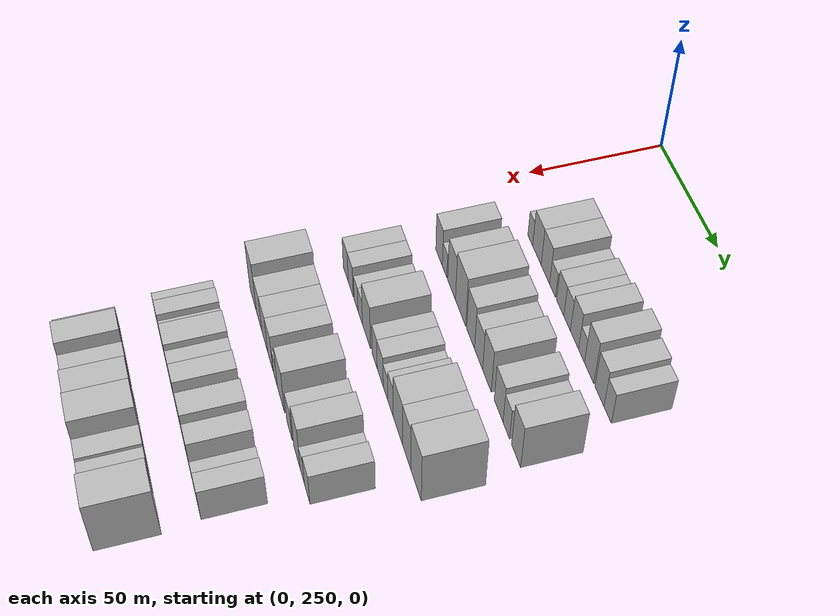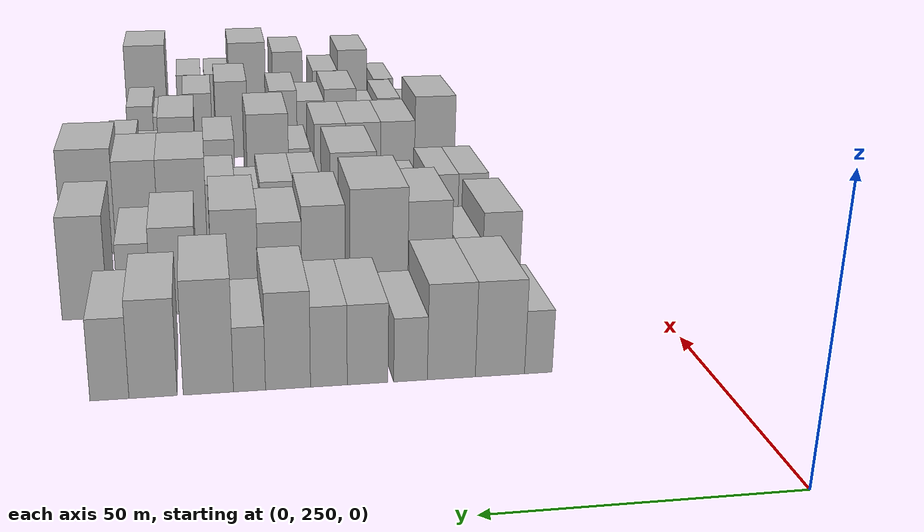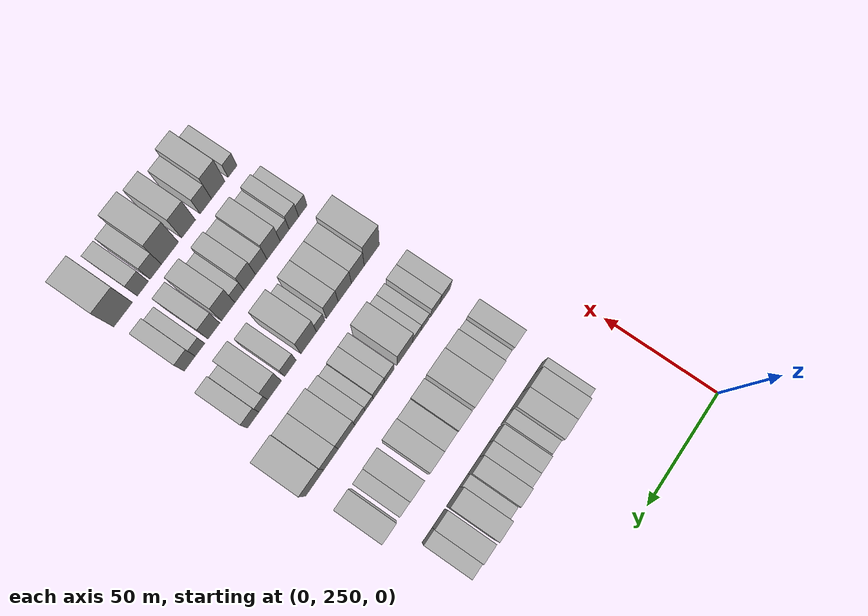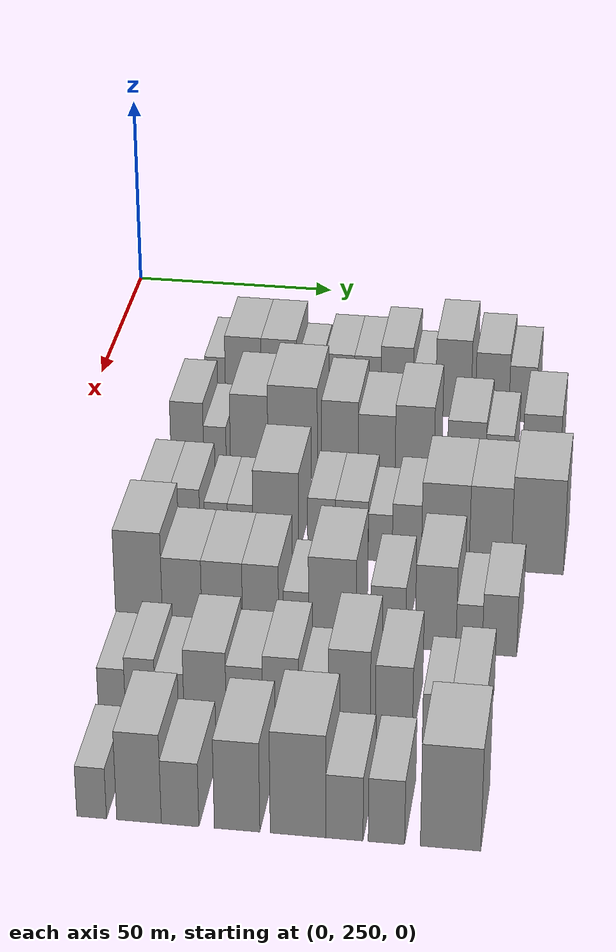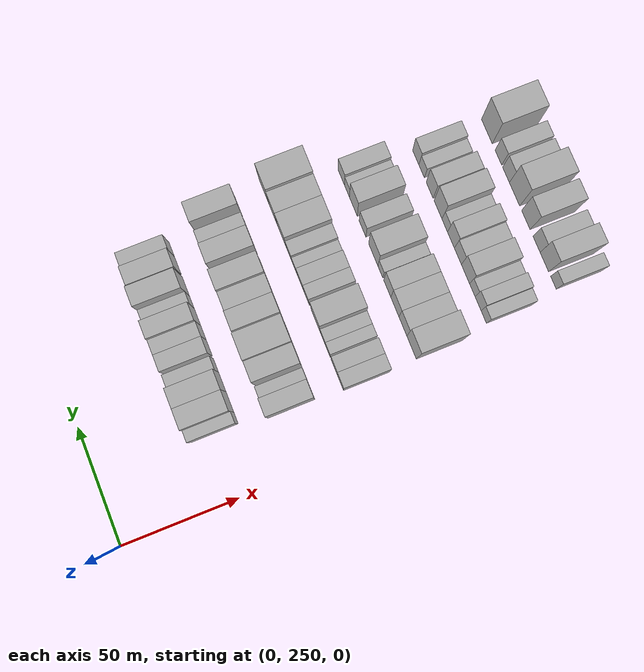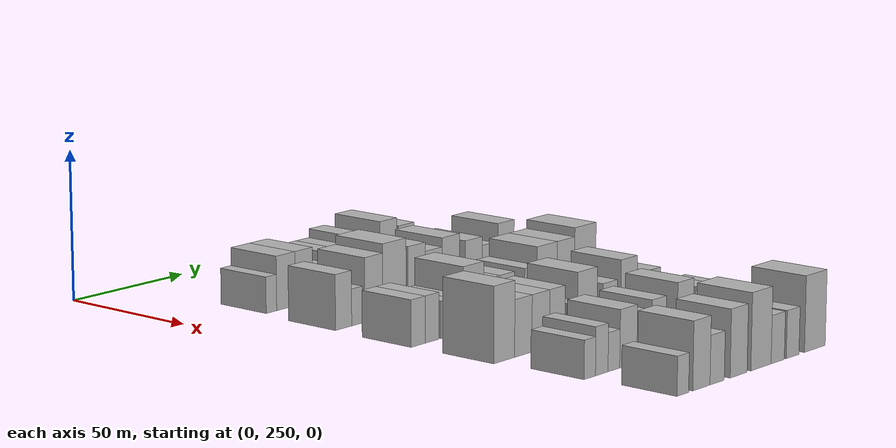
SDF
<sdf version="1.6">
 <world name="default">
  <model name="building_101">
   <static>1</static>
   <pose>50.0000 279.9473 0 0.000000 0.000000 0.000000</pose>
   <link name="link">
    <pose>0 0 6.00 0 0 0</pose>
    <collision name="collision"><geometry><box><size>20.0000 4.9583 12.0000</size></box></geometry></collision>
    <visual name="visual">
     <cast_shadows>0</cast_shadows>
     <geometry><box><size>20.0000 4.9583 12.0000</size></box></geometry>
     <material>
      <script>
       <uri>model://HANNAS_wall/materials/scripts</uri>
       <uri>model://HANNAS_wall/materials/textures</uri>
       <name>vrc/HANNAS_wall</name>
      </script>
     </material>
    </visual>
   </link>
  </model>
  <model name="building_102">
   <static>1</static>
   <pose>50.0000 286.8136 0 0.000000 0.000000 0.000000</pose>
   <link name="link">
    <pose>0 0 9.00 0 0 0</pose>
    <collision name="collision"><geometry><box><size>20.0000 8.7743 18.0000</size></box></geometry></collision>
    <visual name="visual">
     <cast_shadows>0</cast_shadows>
     <geometry><box><size>20.0000 8.7743 18.0000</size></box></geometry>
     <material>
      <script>
       <uri>model://HANNAS_wall/materials/scripts</uri>
       <uri>model://HANNAS_wall/materials/textures</uri>
       <name>vrc/HANNAS_wall</name>
      </script>
     </material>
    </visual>
   </link>
  </model>
  <model name="building_103">
   <static>1</static>
   <pose>50.0000 295.4509 0 0.000000 0.000000 0.000000</pose>
   <link name="link">
    <pose>0 0 9.00 0 0 0</pose>
    <collision name="collision"><geometry><box><size>20.0000 8.5003 18.0000</size></box></geometry></collision>
    <visual name="visual">
     <cast_shadows>0</cast_shadows>
     <geometry><box><size>20.0000 8.5003 18.0000</size></box></geometry>
     <material>
      <script>
       <uri>model://HANNAS_wall/materials/scripts</uri>
       <uri>model://HANNAS_wall/materials/textures</uri>
       <name>vrc/HANNAS_wall</name>
      </script>
     </material>
    </visual>
   </link>
  </model>
  <model name="building_104">
   <static>1</static>
   <pose>50.0000 302.6465 0 0.000000 0.000000 0.000000</pose>
   <link name="link">
    <pose>0 0 6.00 0 0 0</pose>
    <collision name="collision"><geometry><box><size>20.0000 5.8908 12.0000</size></box></geometry></collision>
    <visual name="visual">
     <cast_shadows>0</cast_shadows>
     <geometry><box><size>20.0000 5.8908 12.0000</size></box></geometry>
     <material>
      <script>
       <uri>model://HANNAS_wall/materials/scripts</uri>
       <uri>model://HANNAS_wall/materials/textures</uri>
       <name>vrc/HANNAS_wall</name>
      </script>
     </material>
    </visual>
   </link>
  </model>
  <model name="building_105">
   <static>1</static>
   <pose>50.0000 310.1308 0 0.000000 0.000000 0.000000</pose>
   <link name="link">
    <pose>0 0 7.50 0 0 0</pose>
    <collision name="collision"><geometry><box><size>20.0000 7.0779 15.0000</size></box></geometry></collision>
    <visual name="visual">
     <cast_shadows>0</cast_shadows>
     <geometry><box><size>20.0000 7.0779 15.0000</size></box></geometry>
     <material>
      <script>
       <uri>model://HANNAS_wall/materials/scripts</uri>
       <uri>model://HANNAS_wall/materials/textures</uri>
       <name>vrc/HANNAS_wall</name>
      </script>
     </material>
    </visual>
   </link>
  </model>
  <model name="building_106">
   <static>1</static>
   <pose>50.0000 316.8324 0 0.000000 0.000000 0.000000</pose>
   <link name="link">
    <pose>0 0 7.50 0 0 0</pose>
    <collision name="collision"><geometry><box><size>20.0000 6.3253 15.0000</size></box></geometry></collision>
    <visual name="visual">
     <cast_shadows>0</cast_shadows>
     <geometry><box><size>20.0000 6.3253 15.0000</size></box></geometry>
     <material>
      <script>
       <uri>model://HANNAS_wall/materials/scripts</uri>
       <uri>model://HANNAS_wall/materials/textures</uri>
       <name>vrc/HANNAS_wall</name>
      </script>
     </material>
    </visual>
   </link>
  </model>
  <model name="building_107">
   <static>1</static>
   <pose>50.0000 323.8422 0 0.000000 0.000000 0.000000</pose>
   <link name="link">
    <pose>0 0 9.00 0 0 0</pose>
    <collision name="collision"><geometry><box><size>20.0000 7.6942 18.0000</size></box></geometry></collision>
    <visual name="visual">
     <cast_shadows>0</cast_shadows>
     <geometry><box><size>20.0000 7.6942 18.0000</size></box></geometry>
     <material>
      <script>
       <uri>model://HANNAS_wall/materials/scripts</uri>
       <uri>model://HANNAS_wall/materials/textures</uri>
       <name>vrc/HANNAS_wall</name>
      </script>
     </material>
    </visual>
   </link>
  </model>
  <model name="building_108">
   <static>1</static>
   <pose>50.0000 330.4075 0 0.000000 0.000000 0.000000</pose>
   <link name="link">
    <pose>0 0 6.00 0 0 0</pose>
    <collision name="collision"><geometry><box><size>20.0000 5.4365 12.0000</size></box></geometry></collision>
    <visual name="visual">
     <cast_shadows>0</cast_shadows>
     <geometry><box><size>20.0000 5.4365 12.0000</size></box></geometry>
     <material>
      <script>
       <uri>model://HANNAS_wall/materials/scripts</uri>
       <uri>model://HANNAS_wall/materials/textures</uri>
       <name>vrc/HANNAS_wall</name>
      </script>
     </material>
    </visual>
   </link>
  </model>
  <model name="building_109">
   <static>1</static>
   <pose>50.0000 337.3617 0 0.000000 0.000000 0.000000</pose>
   <link name="link">
    <pose>0 0 10.50 0 0 0</pose>
    <collision name="collision"><geometry><box><size>20.0000 8.4718 21.0000</size></box></geometry></collision>
    <visual name="visual">
     <cast_shadows>0</cast_shadows>
     <geometry><box><size>20.0000 8.4718 21.0000</size></box></geometry>
     <material>
      <script>
       <uri>model://HANNAS_wall/materials/scripts</uri>
       <uri>model://HANNAS_wall/materials/textures</uri>
       <name>vrc/HANNAS_wall</name>
      </script>
     </material>
    </visual>
   </link>
  </model>
  <model name="building_110">
   <static>1</static>
   <pose>50.0000 346.6164 0 0.000000 0.000000 0.000000</pose>
   <link name="link">
    <pose>0 0 9.00 0 0 0</pose>
    <collision name="collision"><geometry><box><size>20.0000 8.0377 18.0000</size></box></geometry></collision>
    <visual name="visual">
     <cast_shadows>0</cast_shadows>
     <geometry><box><size>20.0000 8.0377 18.0000</size></box></geometry>
     <material>
      <script>
       <uri>model://HANNAS_wall/materials/scripts</uri>
       <uri>model://HANNAS_wall/materials/textures</uri>
       <name>vrc/HANNAS_wall</name>
      </script>
     </material>
    </visual>
   </link>
  </model>
  <model name="building_111">
   <static>1</static>
   <pose>50.0000 353.8605 0 0.000000 0.000000 0.000000</pose>
   <link name="link">
    <pose>0 0 7.50 0 0 0</pose>
    <collision name="collision"><geometry><box><size>20.0000 6.4505 15.0000</size></box></geometry></collision>
    <visual name="visual">
     <cast_shadows>0</cast_shadows>
     <geometry><box><size>20.0000 6.4505 15.0000</size></box></geometry>
     <material>
      <script>
       <uri>model://HANNAS_wall/materials/scripts</uri>
       <uri>model://HANNAS_wall/materials/textures</uri>
       <name>vrc/HANNAS_wall</name>
      </script>
     </material>
    </visual>
   </link>
  </model>
  <model name="building_226">
   <static>1</static>
   <pose>82.0000 278.8801 0 0.000000 0.000000 0.000000</pose>
   <link name="link">
    <pose>0 0 9.00 0 0 0</pose>
    <collision name="collision"><geometry><box><size>20.0000 7.6573 18.0000</size></box></geometry></collision>
    <visual name="visual">
     <cast_shadows>0</cast_shadows>
     <geometry><box><size>20.0000 7.6573 18.0000</size></box></geometry>
     <material>
      <script>
       <uri>model://HANNAS_wall/materials/scripts</uri>
       <uri>model://HANNAS_wall/materials/textures</uri>
       <name>vrc/HANNAS_wall</name>
      </script>
     </material>
    </visual>
   </link>
  </model>
  <model name="building_227">
   <static>1</static>
   <pose>82.0000 285.3272 0 0.000000 0.000000 0.000000</pose>
   <link name="link">
    <pose>0 0 6.00 0 0 0</pose>
    <collision name="collision"><geometry><box><size>20.0000 5.2370 12.0000</size></box></geometry></collision>
    <visual name="visual">
     <cast_shadows>0</cast_shadows>
     <geometry><box><size>20.0000 5.2370 12.0000</size></box></geometry>
     <material>
      <script>
       <uri>model://HANNAS_wall/materials/scripts</uri>
       <uri>model://HANNAS_wall/materials/textures</uri>
       <name>vrc/HANNAS_wall</name>
      </script>
     </material>
    </visual>
   </link>
  </model>
  <model name="building_228">
   <static>1</static>
   <pose>82.0000 293.3117 0 0.000000 0.000000 0.000000</pose>
   <link name="link">
    <pose>0 0 10.50 0 0 0</pose>
    <collision name="collision"><geometry><box><size>20.0000 8.7321 21.0000</size></box></geometry></collision>
    <visual name="visual">
     <cast_shadows>0</cast_shadows>
     <geometry><box><size>20.0000 8.7321 21.0000</size></box></geometry>
     <material>
      <script>
       <uri>model://HANNAS_wall/materials/scripts</uri>
       <uri>model://HANNAS_wall/materials/textures</uri>
       <name>vrc/HANNAS_wall</name>
      </script>
     </material>
    </visual>
   </link>
  </model>
  <model name="building_229">
   <static>1</static>
   <pose>82.0000 303.3961 0 0.000000 0.000000 0.000000</pose>
   <link name="link">
    <pose>0 0 12.00 0 0 0</pose>
    <collision name="collision"><geometry><box><size>20.0000 11.4367 24.0000</size></box></geometry></collision>
    <visual name="visual">
     <cast_shadows>0</cast_shadows>
     <geometry><box><size>20.0000 11.4367 24.0000</size></box></geometry>
     <material>
      <script>
       <uri>model://HANNAS_wall/materials/scripts</uri>
       <uri>model://HANNAS_wall/materials/textures</uri>
       <name>vrc/HANNAS_wall</name>
      </script>
     </material>
    </visual>
   </link>
  </model>
  <model name="building_230">
   <static>1</static>
   <pose>82.0000 314.3326 0 0.000000 0.000000 0.000000</pose>
   <link name="link">
    <pose>0 0 10.50 0 0 0</pose>
    <collision name="collision"><geometry><box><size>20.0000 8.4361 21.0000</size></box></geometry></collision>
    <visual name="visual">
     <cast_shadows>0</cast_shadows>
     <geometry><box><size>20.0000 8.4361 21.0000</size></box></geometry>
     <material>
      <script>
       <uri>model://HANNAS_wall/materials/scripts</uri>
       <uri>model://HANNAS_wall/materials/textures</uri>
       <name>vrc/HANNAS_wall</name>
      </script>
     </material>
    </visual>
   </link>
  </model>
  <model name="building_231">
   <static>1</static>
   <pose>82.0000 322.8037 0 0.000000 0.000000 0.000000</pose>
   <link name="link">
    <pose>0 0 9.00 0 0 0</pose>
    <collision name="collision"><geometry><box><size>20.0000 8.5062 18.0000</size></box></geometry></collision>
    <visual name="visual">
     <cast_shadows>0</cast_shadows>
     <geometry><box><size>20.0000 8.5062 18.0000</size></box></geometry>
     <material>
      <script>
       <uri>model://HANNAS_wall/materials/scripts</uri>
       <uri>model://HANNAS_wall/materials/textures</uri>
       <name>vrc/HANNAS_wall</name>
      </script>
     </material>
    </visual>
   </link>
  </model>
  <model name="building_232">
   <static>1</static>
   <pose>82.0000 331.5142 0 0.000000 0.000000 0.000000</pose>
   <link name="link">
    <pose>0 0 10.50 0 0 0</pose>
    <collision name="collision"><geometry><box><size>20.0000 8.9146 21.0000</size></box></geometry></collision>
    <visual name="visual">
     <cast_shadows>0</cast_shadows>
     <geometry><box><size>20.0000 8.9146 21.0000</size></box></geometry>
     <material>
      <script>
       <uri>model://HANNAS_wall/materials/scripts</uri>
       <uri>model://HANNAS_wall/materials/textures</uri>
       <name>vrc/HANNAS_wall</name>
      </script>
     </material>
    </visual>
   </link>
  </model>
  <model name="building_233">
   <static>1</static>
   <pose>82.0000 343.3546 0 0.000000 0.000000 0.000000</pose>
   <link name="link">
    <pose>0 0 9.00 0 0 0</pose>
    <collision name="collision"><geometry><box><size>20.0000 8.7663 18.0000</size></box></geometry></collision>
    <visual name="visual">
     <cast_shadows>0</cast_shadows>
     <geometry><box><size>20.0000 8.7663 18.0000</size></box></geometry>
     <material>
      <script>
       <uri>model://HANNAS_wall/materials/scripts</uri>
       <uri>model://HANNAS_wall/materials/textures</uri>
       <name>vrc/HANNAS_wall</name>
      </script>
     </material>
    </visual>
   </link>
  </model>
  <model name="building_234">
   <static>1</static>
   <pose>82.0000 350.8895 0 0.000000 0.000000 0.000000</pose>
   <link name="link">
    <pose>0 0 7.50 0 0 0</pose>
    <collision name="collision"><geometry><box><size>20.0000 6.3034 15.0000</size></box></geometry></collision>
    <visual name="visual">
     <cast_shadows>0</cast_shadows>
     <geometry><box><size>20.0000 6.3034 15.0000</size></box></geometry>
     <material>
      <script>
       <uri>model://HANNAS_wall/materials/scripts</uri>
       <uri>model://HANNAS_wall/materials/textures</uri>
       <name>vrc/HANNAS_wall</name>
      </script>
     </material>
    </visual>
   </link>
  </model>
  <model name="building_235">
   <static>1</static>
   <pose>82.0000 360.3417 0 0.000000 0.000000 0.000000</pose>
   <link name="link">
    <pose>0 0 10.50 0 0 0</pose>
    <collision name="collision"><geometry><box><size>20.0000 8.6011 21.0000</size></box></geometry></collision>
    <visual name="visual">
     <cast_shadows>0</cast_shadows>
     <geometry><box><size>20.0000 8.6011 21.0000</size></box></geometry>
     <material>
      <script>
       <uri>model://HANNAS_wall/materials/scripts</uri>
       <uri>model://HANNAS_wall/materials/textures</uri>
       <name>vrc/HANNAS_wall</name>
      </script>
     </material>
    </visual>
   </link>
  </model>
  <model name="building_352">
   <static>1</static>
   <pose>114.0000 277.4631 0 0.000000 0.000000 0.000000</pose>
   <link name="link">
    <pose>0 0 7.50 0 0 0</pose>
    <collision name="collision"><geometry><box><size>20.0000 6.7157 15.0000</size></box></geometry></collision>
    <visual name="visual">
     <cast_shadows>0</cast_shadows>
     <geometry><box><size>20.0000 6.7157 15.0000</size></box></geometry>
     <material>
      <script>
       <uri>model://HANNAS_wall/materials/scripts</uri>
       <uri>model://HANNAS_wall/materials/textures</uri>
       <name>vrc/HANNAS_wall</name>
      </script>
     </material>
    </visual>
   </link>
  </model>
  <model name="building_353">
   <static>1</static>
   <pose>114.0000 284.1333 0 0.000000 0.000000 0.000000</pose>
   <link name="link">
    <pose>0 0 7.50 0 0 0</pose>
    <collision name="collision"><geometry><box><size>20.0000 6.6247 15.0000</size></box></geometry></collision>
    <visual name="visual">
     <cast_shadows>0</cast_shadows>
     <geometry><box><size>20.0000 6.6247 15.0000</size></box></geometry>
     <material>
      <script>
       <uri>model://HANNAS_wall/materials/scripts</uri>
       <uri>model://HANNAS_wall/materials/textures</uri>
       <name>vrc/HANNAS_wall</name>
      </script>
     </material>
    </visual>
   </link>
  </model>
  <model name="building_354">
   <static>1</static>
   <pose>114.0000 291.0380 0 0.000000 0.000000 0.000000</pose>
   <link name="link">
    <pose>0 0 6.00 0 0 0</pose>
    <collision name="collision"><geometry><box><size>20.0000 5.1848 12.0000</size></box></geometry></collision>
    <visual name="visual">
     <cast_shadows>0</cast_shadows>
     <geometry><box><size>20.0000 5.1848 12.0000</size></box></geometry>
     <material>
      <script>
       <uri>model://HANNAS_wall/materials/scripts</uri>
       <uri>model://HANNAS_wall/materials/textures</uri>
       <name>vrc/HANNAS_wall</name>
      </script>
     </material>
    </visual>
   </link>
  </model>
  <model name="building_355">
   <static>1</static>
   <pose>114.0000 296.4547 0 0.000000 0.000000 0.000000</pose>
   <link name="link">
    <pose>0 0 6.00 0 0 0</pose>
    <collision name="collision"><geometry><box><size>20.0000 5.6485 12.0000</size></box></geometry></collision>
    <visual name="visual">
     <cast_shadows>0</cast_shadows>
     <geometry><box><size>20.0000 5.6485 12.0000</size></box></geometry>
     <material>
      <script>
       <uri>model://HANNAS_wall/materials/scripts</uri>
       <uri>model://HANNAS_wall/materials/textures</uri>
       <name>vrc/HANNAS_wall</name>
      </script>
     </material>
    </visual>
   </link>
  </model>
  <model name="building_356">
   <static>1</static>
   <pose>114.0000 304.3384 0 0.000000 0.000000 0.000000</pose>
   <link name="link">
    <pose>0 0 10.50 0 0 0</pose>
    <collision name="collision"><geometry><box><size>20.0000 10.1188 21.0000</size></box></geometry></collision>
    <visual name="visual">
     <cast_shadows>0</cast_shadows>
     <geometry><box><size>20.0000 10.1188 21.0000</size></box></geometry>
     <material>
      <script>
       <uri>model://HANNAS_wall/materials/scripts</uri>
       <uri>model://HANNAS_wall/materials/textures</uri>
       <name>vrc/HANNAS_wall</name>
      </script>
     </material>
    </visual>
   </link>
  </model>
  <model name="building_357">
   <static>1</static>
   <pose>114.0000 314.4552 0 0.000000 0.000000 0.000000</pose>
   <link name="link">
    <pose>0 0 7.50 0 0 0</pose>
    <collision name="collision"><geometry><box><size>20.0000 6.1148 15.0000</size></box></geometry></collision>
    <visual name="visual">
     <cast_shadows>0</cast_shadows>
     <geometry><box><size>20.0000 6.1148 15.0000</size></box></geometry>
     <material>
      <script>
       <uri>model://HANNAS_wall/materials/scripts</uri>
       <uri>model://HANNAS_wall/materials/textures</uri>
       <name>vrc/HANNAS_wall</name>
      </script>
     </material>
    </visual>
   </link>
  </model>
  <model name="building_358">
   <static>1</static>
   <pose>114.0000 321.1528 0 0.000000 0.000000 0.000000</pose>
   <link name="link">
    <pose>0 0 7.50 0 0 0</pose>
    <collision name="collision"><geometry><box><size>20.0000 7.2803 15.0000</size></box></geometry></collision>
    <visual name="visual">
     <cast_shadows>0</cast_shadows>
     <geometry><box><size>20.0000 7.2803 15.0000</size></box></geometry>
     <material>
      <script>
       <uri>model://HANNAS_wall/materials/scripts</uri>
       <uri>model://HANNAS_wall/materials/textures</uri>
       <name>vrc/HANNAS_wall</name>
      </script>
     </material>
    </visual>
   </link>
  </model>
  <model name="building_359">
   <static>1</static>
   <pose>114.0000 327.4402 0 0.000000 0.000000 0.000000</pose>
   <link name="link">
    <pose>0 0 6.00 0 0 0</pose>
    <collision name="collision"><geometry><box><size>20.0000 5.2945 12.0000</size></box></geometry></collision>
    <visual name="visual">
     <cast_shadows>0</cast_shadows>
     <geometry><box><size>20.0000 5.2945 12.0000</size></box></geometry>
     <material>
      <script>
       <uri>model://HANNAS_wall/materials/scripts</uri>
       <uri>model://HANNAS_wall/materials/textures</uri>
       <name>vrc/HANNAS_wall</name>
      </script>
     </material>
    </visual>
   </link>
  </model>
  <model name="building_360">
   <static>1</static>
   <pose>114.0000 333.3049 0 0.000000 0.000000 0.000000</pose>
   <link name="link">
    <pose>0 0 7.50 0 0 0</pose>
    <collision name="collision"><geometry><box><size>20.0000 6.4349 15.0000</size></box></geometry></collision>
    <visual name="visual">
     <cast_shadows>0</cast_shadows>
     <geometry><box><size>20.0000 6.4349 15.0000</size></box></geometry>
     <material>
      <script>
       <uri>model://HANNAS_wall/materials/scripts</uri>
       <uri>model://HANNAS_wall/materials/textures</uri>
       <name>vrc/HANNAS_wall</name>
      </script>
     </material>
    </visual>
   </link>
  </model>
  <model name="building_361">
   <static>1</static>
   <pose>114.0000 341.7629 0 0.000000 0.000000 0.000000</pose>
   <link name="link">
    <pose>0 0 10.50 0 0 0</pose>
    <collision name="collision"><geometry><box><size>20.0000 10.4810 21.0000</size></box></geometry></collision>
    <visual name="visual">
     <cast_shadows>0</cast_shadows>
     <geometry><box><size>20.0000 10.4810 21.0000</size></box></geometry>
     <material>
      <script>
       <uri>model://HANNAS_wall/materials/scripts</uri>
       <uri>model://HANNAS_wall/materials/textures</uri>
       <name>vrc/HANNAS_wall</name>
      </script>
     </material>
    </visual>
   </link>
  </model>
  <model name="building_362">
   <static>1</static>
   <pose>114.0000 351.6039 0 0.000000 0.000000 0.000000</pose>
   <link name="link">
    <pose>0 0 10.50 0 0 0</pose>
    <collision name="collision"><geometry><box><size>20.0000 9.2011 21.0000</size></box></geometry></collision>
    <visual name="visual">
     <cast_shadows>0</cast_shadows>
     <geometry><box><size>20.0000 9.2011 21.0000</size></box></geometry>
     <material>
      <script>
       <uri>model://HANNAS_wall/materials/scripts</uri>
       <uri>model://HANNAS_wall/materials/textures</uri>
       <name>vrc/HANNAS_wall</name>
      </script>
     </material>
    </visual>
   </link>
  </model>
  <model name="building_363">
   <static>1</static>
   <pose>114.0000 361.9002 0 0.000000 0.000000 0.000000</pose>
   <link name="link">
    <pose>0 0 12.00 0 0 0</pose>
    <collision name="collision"><geometry><box><size>20.0000 11.3915 24.0000</size></box></geometry></collision>
    <visual name="visual">
     <cast_shadows>0</cast_shadows>
     <geometry><box><size>20.0000 11.3915 24.0000</size></box></geometry>
     <material>
      <script>
       <uri>model://HANNAS_wall/materials/scripts</uri>
       <uri>model://HANNAS_wall/materials/textures</uri>
       <name>vrc/HANNAS_wall</name>
      </script>
     </material>
    </visual>
   </link>
  </model>
  <model name="building_464">
   <static>1</static>
   <pose>146.0000 279.9501 0 0.000000 0.000000 0.000000</pose>
   <link name="link">
    <pose>0 0 12.00 0 0 0</pose>
    <collision name="collision"><geometry><box><size>20.0000 10.0325 24.0000</size></box></geometry></collision>
    <visual name="visual">
     <cast_shadows>0</cast_shadows>
     <geometry><box><size>20.0000 10.0325 24.0000</size></box></geometry>
     <material>
      <script>
       <uri>model://HANNAS_wall/materials/scripts</uri>
       <uri>model://HANNAS_wall/materials/textures</uri>
       <name>vrc/HANNAS_wall</name>
      </script>
     </material>
    </visual>
   </link>
  </model>
  <model name="building_465">
   <static>1</static>
   <pose>146.0000 289.1864 0 0.000000 0.000000 0.000000</pose>
   <link name="link">
    <pose>0 0 9.00 0 0 0</pose>
    <collision name="collision"><geometry><box><size>20.0000 8.4400 18.0000</size></box></geometry></collision>
    <visual name="visual">
     <cast_shadows>0</cast_shadows>
     <geometry><box><size>20.0000 8.4400 18.0000</size></box></geometry>
     <material>
      <script>
       <uri>model://HANNAS_wall/materials/scripts</uri>
       <uri>model://HANNAS_wall/materials/textures</uri>
       <name>vrc/HANNAS_wall</name>
      </script>
     </material>
    </visual>
   </link>
  </model>
  <model name="building_466">
   <static>1</static>
   <pose>146.0000 297.7443 0 0.000000 0.000000 0.000000</pose>
   <link name="link">
    <pose>0 0 9.00 0 0 0</pose>
    <collision name="collision"><geometry><box><size>20.0000 8.6758 18.0000</size></box></geometry></collision>
    <visual name="visual">
     <cast_shadows>0</cast_shadows>
     <geometry><box><size>20.0000 8.6758 18.0000</size></box></geometry>
     <material>
      <script>
       <uri>model://HANNAS_wall/materials/scripts</uri>
       <uri>model://HANNAS_wall/materials/textures</uri>
       <name>vrc/HANNAS_wall</name>
      </script>
     </material>
    </visual>
   </link>
  </model>
  <model name="building_467">
   <static>1</static>
   <pose>146.0000 305.9208 0 0.000000 0.000000 0.000000</pose>
   <link name="link">
    <pose>0 0 9.00 0 0 0</pose>
    <collision name="collision"><geometry><box><size>20.0000 7.6772 18.0000</size></box></geometry></collision>
    <visual name="visual">
     <cast_shadows>0</cast_shadows>
     <geometry><box><size>20.0000 7.6772 18.0000</size></box></geometry>
     <material>
      <script>
       <uri>model://HANNAS_wall/materials/scripts</uri>
       <uri>model://HANNAS_wall/materials/textures</uri>
       <name>vrc/HANNAS_wall</name>
      </script>
     </material>
    </visual>
   </link>
  </model>
  <model name="building_468">
   <static>1</static>
   <pose>146.0000 313.4231 0 0.000000 0.000000 0.000000</pose>
   <link name="link">
    <pose>0 0 6.00 0 0 0</pose>
    <collision name="collision"><geometry><box><size>20.0000 5.3275 12.0000</size></box></geometry></collision>
    <visual name="visual">
     <cast_shadows>0</cast_shadows>
     <geometry><box><size>20.0000 5.3275 12.0000</size></box></geometry>
     <material>
      <script>
       <uri>model://HANNAS_wall/materials/scripts</uri>
       <uri>model://HANNAS_wall/materials/textures</uri>
       <name>vrc/HANNAS_wall</name>
      </script>
     </material>
    </visual>
   </link>
  </model>
  <model name="building_469">
   <static>1</static>
   <pose>146.0000 321.1285 0 0.000000 0.000000 0.000000</pose>
   <link name="link">
    <pose>0 0 10.50 0 0 0</pose>
    <collision name="collision"><geometry><box><size>20.0000 10.0833 21.0000</size></box></geometry></collision>
    <visual name="visual">
     <cast_shadows>0</cast_shadows>
     <geometry><box><size>20.0000 10.0833 21.0000</size></box></geometry>
     <material>
      <script>
       <uri>model://HANNAS_wall/materials/scripts</uri>
       <uri>model://HANNAS_wall/materials/textures</uri>
       <name>vrc/HANNAS_wall</name>
      </script>
     </material>
    </visual>
   </link>
  </model>
  <model name="building_470">
   <static>1</static>
   <pose>146.0000 332.8654 0 0.000000 0.000000 0.000000</pose>
   <link name="link">
    <pose>0 0 7.50 0 0 0</pose>
    <collision name="collision"><geometry><box><size>20.0000 7.3906 15.0000</size></box></geometry></collision>
    <visual name="visual">
     <cast_shadows>0</cast_shadows>
     <geometry><box><size>20.0000 7.3906 15.0000</size></box></geometry>
     <material>
      <script>
       <uri>model://HANNAS_wall/materials/scripts</uri>
       <uri>model://HANNAS_wall/materials/textures</uri>
       <name>vrc/HANNAS_wall</name>
      </script>
     </material>
    </visual>
   </link>
  </model>
  <model name="building_471">
   <static>1</static>
   <pose>146.0000 342.8603 0 0.000000 0.000000 0.000000</pose>
   <link name="link">
    <pose>0 0 10.50 0 0 0</pose>
    <collision name="collision"><geometry><box><size>20.0000 8.5992 21.0000</size></box></geometry></collision>
    <visual name="visual">
     <cast_shadows>0</cast_shadows>
     <geometry><box><size>20.0000 8.5992 21.0000</size></box></geometry>
     <material>
      <script>
       <uri>model://HANNAS_wall/materials/scripts</uri>
       <uri>model://HANNAS_wall/materials/textures</uri>
       <name>vrc/HANNAS_wall</name>
      </script>
     </material>
    </visual>
   </link>
  </model>
  <model name="building_472">
   <static>1</static>
   <pose>146.0000 349.9110 0 0.000000 0.000000 0.000000</pose>
   <link name="link">
    <pose>0 0 6.00 0 0 0</pose>
    <collision name="collision"><geometry><box><size>20.0000 5.5022 12.0000</size></box></geometry></collision>
    <visual name="visual">
     <cast_shadows>0</cast_shadows>
     <geometry><box><size>20.0000 5.5022 12.0000</size></box></geometry>
     <material>
      <script>
       <uri>model://HANNAS_wall/materials/scripts</uri>
       <uri>model://HANNAS_wall/materials/textures</uri>
       <name>vrc/HANNAS_wall</name>
      </script>
     </material>
    </visual>
   </link>
  </model>
  <model name="building_473">
   <static>1</static>
   <pose>146.0000 356.2573 0 0.000000 0.000000 0.000000</pose>
   <link name="link">
    <pose>0 0 7.50 0 0 0</pose>
    <collision name="collision"><geometry><box><size>20.0000 7.1904 15.0000</size></box></geometry></collision>
    <visual name="visual">
     <cast_shadows>0</cast_shadows>
     <geometry><box><size>20.0000 7.1904 15.0000</size></box></geometry>
     <material>
      <script>
       <uri>model://HANNAS_wall/materials/scripts</uri>
       <uri>model://HANNAS_wall/materials/textures</uri>
       <name>vrc/HANNAS_wall</name>
      </script>
     </material>
    </visual>
   </link>
  </model>
  <model name="building_592">
   <static>1</static>
   <pose>178.0000 280.5547 0 0.000000 0.000000 0.000000</pose>
   <link name="link">
    <pose>0 0 6.00 0 0 0</pose>
    <collision name="collision"><geometry><box><size>20.0000 5.5552 12.0000</size></box></geometry></collision>
    <visual name="visual">
     <cast_shadows>0</cast_shadows>
     <geometry><box><size>20.0000 5.5552 12.0000</size></box></geometry>
     <material>
      <script>
       <uri>model://HANNAS_wall/materials/scripts</uri>
       <uri>model://HANNAS_wall/materials/textures</uri>
       <name>vrc/HANNAS_wall</name>
      </script>
     </material>
    </visual>
   </link>
  </model>
  <model name="building_593">
   <static>1</static>
   <pose>178.0000 286.4161 0 0.000000 0.000000 0.000000</pose>
   <link name="link">
    <pose>0 0 7.50 0 0 0</pose>
    <collision name="collision"><geometry><box><size>20.0000 6.1675 15.0000</size></box></geometry></collision>
    <visual name="visual">
     <cast_shadows>0</cast_shadows>
     <geometry><box><size>20.0000 6.1675 15.0000</size></box></geometry>
     <material>
      <script>
       <uri>model://HANNAS_wall/materials/scripts</uri>
       <uri>model://HANNAS_wall/materials/textures</uri>
       <name>vrc/HANNAS_wall</name>
      </script>
     </material>
    </visual>
   </link>
  </model>
  <model name="building_594">
   <static>1</static>
   <pose>178.0000 292.4147 0 0.000000 0.000000 0.000000</pose>
   <link name="link">
    <pose>0 0 6.00 0 0 0</pose>
    <collision name="collision"><geometry><box><size>20.0000 5.8299 12.0000</size></box></geometry></collision>
    <visual name="visual">
     <cast_shadows>0</cast_shadows>
     <geometry><box><size>20.0000 5.8299 12.0000</size></box></geometry>
     <material>
      <script>
       <uri>model://HANNAS_wall/materials/scripts</uri>
       <uri>model://HANNAS_wall/materials/textures</uri>
       <name>vrc/HANNAS_wall</name>
      </script>
     </material>
    </visual>
   </link>
  </model>
  <model name="building_595">
   <static>1</static>
   <pose>178.0000 299.6330 0 0.000000 0.000000 0.000000</pose>
   <link name="link">
    <pose>0 0 9.00 0 0 0</pose>
    <collision name="collision"><geometry><box><size>20.0000 8.6067 18.0000</size></box></geometry></collision>
    <visual name="visual">
     <cast_shadows>0</cast_shadows>
     <geometry><box><size>20.0000 8.6067 18.0000</size></box></geometry>
     <material>
      <script>
       <uri>model://HANNAS_wall/materials/scripts</uri>
       <uri>model://HANNAS_wall/materials/textures</uri>
       <name>vrc/HANNAS_wall</name>
      </script>
     </material>
    </visual>
   </link>
  </model>
  <model name="building_596">
   <static>1</static>
   <pose>178.0000 307.6259 0 0.000000 0.000000 0.000000</pose>
   <link name="link">
    <pose>0 0 7.50 0 0 0</pose>
    <collision name="collision"><geometry><box><size>20.0000 7.3790 15.0000</size></box></geometry></collision>
    <visual name="visual">
     <cast_shadows>0</cast_shadows>
     <geometry><box><size>20.0000 7.3790 15.0000</size></box></geometry>
     <material>
      <script>
       <uri>model://HANNAS_wall/materials/scripts</uri>
       <uri>model://HANNAS_wall/materials/textures</uri>
       <name>vrc/HANNAS_wall</name>
      </script>
     </material>
    </visual>
   </link>
  </model>
  <model name="building_597">
   <static>1</static>
   <pose>178.0000 314.9743 0 0.000000 0.000000 0.000000</pose>
   <link name="link">
    <pose>0 0 9.00 0 0 0</pose>
    <collision name="collision"><geometry><box><size>20.0000 7.3178 18.0000</size></box></geometry></collision>
    <visual name="visual">
     <cast_shadows>0</cast_shadows>
     <geometry><box><size>20.0000 7.3178 18.0000</size></box></geometry>
     <material>
      <script>
       <uri>model://HANNAS_wall/materials/scripts</uri>
       <uri>model://HANNAS_wall/materials/textures</uri>
       <name>vrc/HANNAS_wall</name>
      </script>
     </material>
    </visual>
   </link>
  </model>
  <model name="building_598">
   <static>1</static>
   <pose>178.0000 321.5917 0 0.000000 0.000000 0.000000</pose>
   <link name="link">
    <pose>0 0 6.00 0 0 0</pose>
    <collision name="collision"><geometry><box><size>20.0000 5.9168 12.0000</size></box></geometry></collision>
    <visual name="visual">
     <cast_shadows>0</cast_shadows>
     <geometry><box><size>20.0000 5.9168 12.0000</size></box></geometry>
     <material>
      <script>
       <uri>model://HANNAS_wall/materials/scripts</uri>
       <uri>model://HANNAS_wall/materials/textures</uri>
       <name>vrc/HANNAS_wall</name>
      </script>
     </material>
    </visual>
   </link>
  </model>
  <model name="building_599">
   <static>1</static>
   <pose>178.0000 328.7805 0 0.000000 0.000000 0.000000</pose>
   <link name="link">
    <pose>0 0 10.50 0 0 0</pose>
    <collision name="collision"><geometry><box><size>20.0000 8.4608 21.0000</size></box></geometry></collision>
    <visual name="visual">
     <cast_shadows>0</cast_shadows>
     <geometry><box><size>20.0000 8.4608 21.0000</size></box></geometry>
     <material>
      <script>
       <uri>model://HANNAS_wall/materials/scripts</uri>
       <uri>model://HANNAS_wall/materials/textures</uri>
       <name>vrc/HANNAS_wall</name>
      </script>
     </material>
    </visual>
   </link>
  </model>
  <model name="building_600">
   <static>1</static>
   <pose>178.0000 337.7452 0 0.000000 0.000000 0.000000</pose>
   <link name="link">
    <pose>0 0 9.00 0 0 0</pose>
    <collision name="collision"><geometry><box><size>20.0000 7.4686 18.0000</size></box></geometry></collision>
    <visual name="visual">
     <cast_shadows>0</cast_shadows>
     <geometry><box><size>20.0000 7.4686 18.0000</size></box></geometry>
     <material>
      <script>
       <uri>model://HANNAS_wall/materials/scripts</uri>
       <uri>model://HANNAS_wall/materials/textures</uri>
       <name>vrc/HANNAS_wall</name>
      </script>
     </material>
    </visual>
   </link>
  </model>
  <model name="building_601">
   <static>1</static>
   <pose>178.0000 346.4367 0 0.000000 0.000000 0.000000</pose>
   <link name="link">
    <pose>0 0 6.00 0 0 0</pose>
    <collision name="collision"><geometry><box><size>20.0000 5.9143 12.0000</size></box></geometry></collision>
    <visual name="visual">
     <cast_shadows>0</cast_shadows>
     <geometry><box><size>20.0000 5.9143 12.0000</size></box></geometry>
     <material>
      <script>
       <uri>model://HANNAS_wall/materials/scripts</uri>
       <uri>model://HANNAS_wall/materials/textures</uri>
       <name>vrc/HANNAS_wall</name>
      </script>
     </material>
    </visual>
   </link>
  </model>
  <model name="building_602">
   <static>1</static>
   <pose>178.0000 352.8055 0 0.000000 0.000000 0.000000</pose>
   <link name="link">
    <pose>0 0 7.50 0 0 0</pose>
    <collision name="collision"><geometry><box><size>20.0000 6.8233 15.0000</size></box></geometry></collision>
    <visual name="visual">
     <cast_shadows>0</cast_shadows>
     <geometry><box><size>20.0000 6.8233 15.0000</size></box></geometry>
     <material>
      <script>
       <uri>model://HANNAS_wall/materials/scripts</uri>
       <uri>model://HANNAS_wall/materials/textures</uri>
       <name>vrc/HANNAS_wall</name>
      </script>
     </material>
    </visual>
   </link>
  </model>
  <model name="building_714">
   <static>1</static>
   <pose>210.0000 283.0279 0 0.000000 0.000000 0.000000</pose>
   <link name="link">
    <pose>0 0 6.00 0 0 0</pose>
    <collision name="collision"><geometry><box><size>20.0000 5.8069 12.0000</size></box></geometry></collision>
    <visual name="visual">
     <cast_shadows>0</cast_shadows>
     <geometry><box><size>20.0000 5.8069 12.0000</size></box></geometry>
     <material>
      <script>
       <uri>model://HANNAS_wall/materials/scripts</uri>
       <uri>model://HANNAS_wall/materials/textures</uri>
       <name>vrc/HANNAS_wall</name>
      </script>
     </material>
    </visual>
   </link>
  </model>
  <model name="building_715">
   <static>1</static>
   <pose>210.0000 292.2782 0 0.000000 0.000000 0.000000</pose>
   <link name="link">
    <pose>0 0 10.50 0 0 0</pose>
    <collision name="collision"><geometry><box><size>20.0000 8.6938 21.0000</size></box></geometry></collision>
    <visual name="visual">
     <cast_shadows>0</cast_shadows>
     <geometry><box><size>20.0000 8.6938 21.0000</size></box></geometry>
     <material>
      <script>
       <uri>model://HANNAS_wall/materials/scripts</uri>
       <uri>model://HANNAS_wall/materials/textures</uri>
       <name>vrc/HANNAS_wall</name>
      </script>
     </material>
    </visual>
   </link>
  </model>
  <model name="building_716">
   <static>1</static>
   <pose>210.0000 300.2772 0 0.000000 0.000000 0.000000</pose>
   <link name="link">
    <pose>0 0 7.50 0 0 0</pose>
    <collision name="collision"><geometry><box><size>20.0000 7.3042 15.0000</size></box></geometry></collision>
    <visual name="visual">
     <cast_shadows>0</cast_shadows>
     <geometry><box><size>20.0000 7.3042 15.0000</size></box></geometry>
     <material>
      <script>
       <uri>model://HANNAS_wall/materials/scripts</uri>
       <uri>model://HANNAS_wall/materials/textures</uri>
       <name>vrc/HANNAS_wall</name>
      </script>
     </material>
    </visual>
   </link>
  </model>
  <model name="building_717">
   <static>1</static>
   <pose>210.0000 311.3246 0 0.000000 0.000000 0.000000</pose>
   <link name="link">
    <pose>0 0 10.50 0 0 0</pose>
    <collision name="collision"><geometry><box><size>20.0000 8.7905 21.0000</size></box></geometry></collision>
    <visual name="visual">
     <cast_shadows>0</cast_shadows>
     <geometry><box><size>20.0000 8.7905 21.0000</size></box></geometry>
     <material>
      <script>
       <uri>model://HANNAS_wall/materials/scripts</uri>
       <uri>model://HANNAS_wall/materials/textures</uri>
       <name>vrc/HANNAS_wall</name>
      </script>
     </material>
    </visual>
   </link>
  </model>
  <model name="building_718">
   <static>1</static>
   <pose>210.0000 323.0680 0 0.000000 0.000000 0.000000</pose>
   <link name="link">
    <pose>0 0 12.00 0 0 0</pose>
    <collision name="collision"><geometry><box><size>20.0000 10.6963 24.0000</size></box></geometry></collision>
    <visual name="visual">
     <cast_shadows>0</cast_shadows>
     <geometry><box><size>20.0000 10.6963 24.0000</size></box></geometry>
     <material>
      <script>
       <uri>model://HANNAS_wall/materials/scripts</uri>
       <uri>model://HANNAS_wall/materials/textures</uri>
       <name>vrc/HANNAS_wall</name>
      </script>
     </material>
    </visual>
   </link>
  </model>
  <model name="building_719">
   <static>1</static>
   <pose>210.0000 331.9798 0 0.000000 0.000000 0.000000</pose>
   <link name="link">
    <pose>0 0 7.50 0 0 0</pose>
    <collision name="collision"><geometry><box><size>20.0000 7.1273 15.0000</size></box></geometry></collision>
    <visual name="visual">
     <cast_shadows>0</cast_shadows>
     <geometry><box><size>20.0000 7.1273 15.0000</size></box></geometry>
     <material>
      <script>
       <uri>model://HANNAS_wall/materials/scripts</uri>
       <uri>model://HANNAS_wall/materials/textures</uri>
       <name>vrc/HANNAS_wall</name>
      </script>
     </material>
    </visual>
   </link>
  </model>
  <model name="building_720">
   <static>1</static>
   <pose>210.0000 340.0164 0 0.000000 0.000000 0.000000</pose>
   <link name="link">
    <pose>0 0 7.50 0 0 0</pose>
    <collision name="collision"><geometry><box><size>20.0000 6.9459 15.0000</size></box></geometry></collision>
    <visual name="visual">
     <cast_shadows>0</cast_shadows>
     <geometry><box><size>20.0000 6.9459 15.0000</size></box></geometry>
     <material>
      <script>
       <uri>model://HANNAS_wall/materials/scripts</uri>
       <uri>model://HANNAS_wall/materials/textures</uri>
       <name>vrc/HANNAS_wall</name>
      </script>
     </material>
    </visual>
   </link>
  </model>
  <model name="building_721">
   <static>1</static>
   <pose>210.0000 352.2280 0 0.000000 0.000000 0.000000</pose>
   <link name="link">
    <pose>0 0 12.00 0 0 0</pose>
    <collision name="collision"><geometry><box><size>20.0000 11.4773 24.0000</size></box></geometry></collision>
    <visual name="visual">
     <cast_shadows>0</cast_shadows>
     <geometry><box><size>20.0000 11.4773 24.0000</size></box></geometry>
     <material>
      <script>
       <uri>model://HANNAS_wall/materials/scripts</uri>
       <uri>model://HANNAS_wall/materials/textures</uri>
       <name>vrc/HANNAS_wall</name>
      </script>
     </material>
    </visual>
   </link>
  </model>
 </world>
</sdf>
